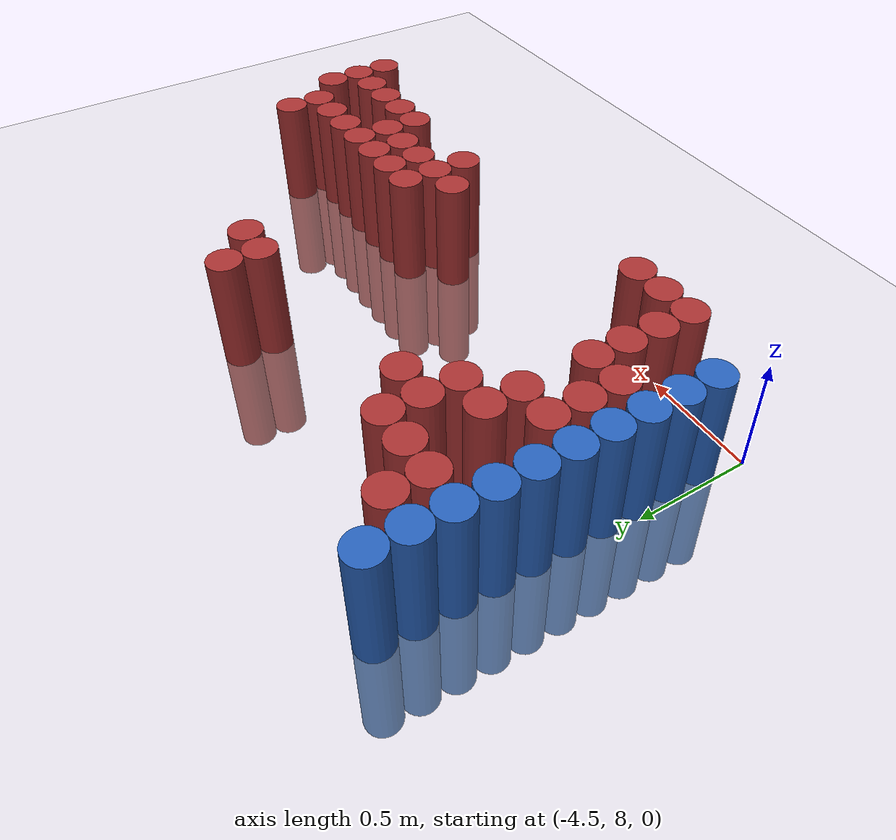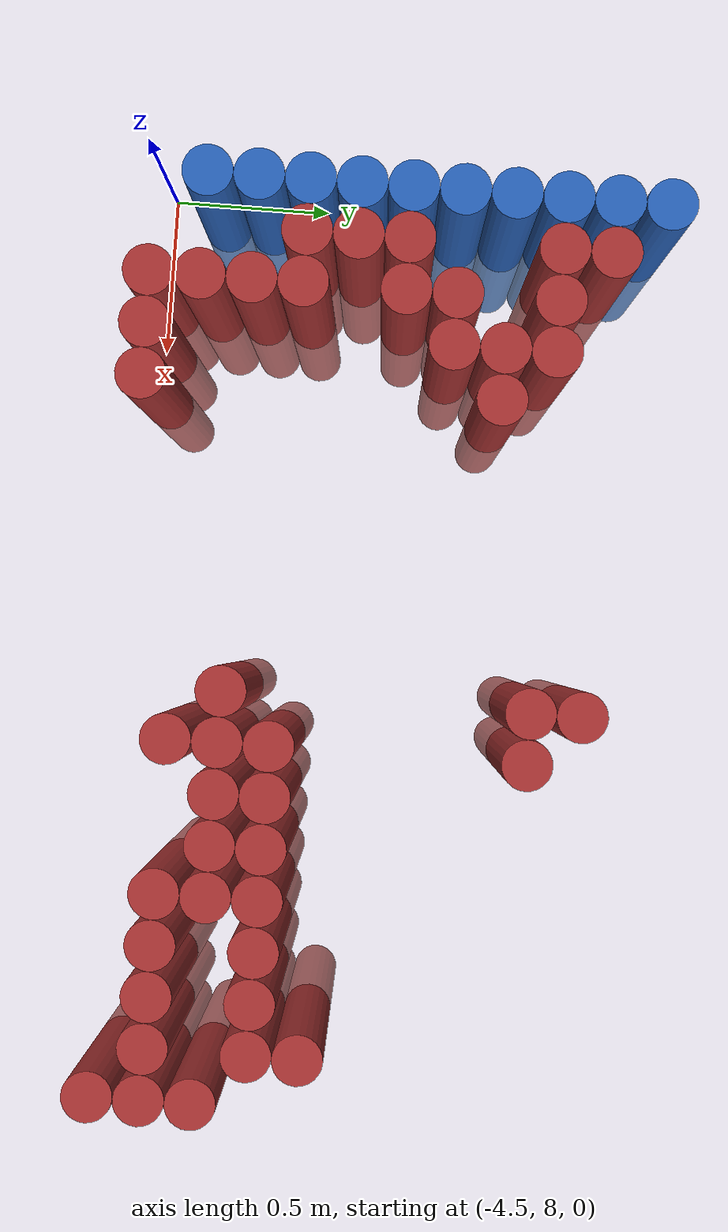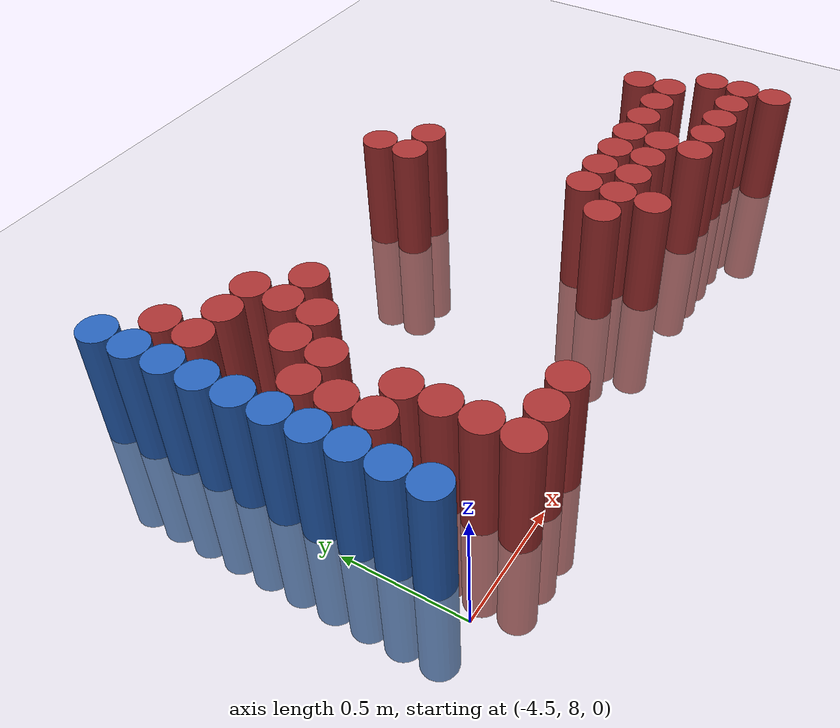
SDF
<sdf version="1.6">
 <world name="default">
  <model name="ground_plane">
   <static>1</static>
   <link name="link">
    <collision name="collision">
     <geometry><plane><normal>0 0 1</normal><size>100 100</size></plane></geometry>
     <surface><friction><ode><mu>100</mu><mu2>50</mu2></ode></friction></surface>
    </collision>
    <visual name="visual">
     <cast_shadows>0</cast_shadows>
     <geometry><plane><normal>0 0 1</normal><size>100 100</size></plane></geometry>
     <material>
      <script><uri>file://media/materials/scripts/gazebo.material</uri><name>Gazebo/Grey</name></script>
     </material>
    </visual>
   </link>
  </model>
  <model name="unit_cylinder_116">
   <static>1</static>
   <pose>-4.425000 8.175000 0.000000 0.000000 0.000000 0.000000</pose>
   <link name="link">
    <inertial>
     <mass>1</mass>
     <inertia><ixx>0.145833</ixx><ixy>0</ixy><ixz>0</ixz><iyy>0.145833</iyy><iyz>0</iyz><izz>0.125</izz></inertia>
    </inertial>
    <collision name="collision">
     <geometry><cylinder><radius>0.075000</radius><length>1</length></cylinder></geometry>
    </collision>
    <visual name="visual">
     <geometry><cylinder><radius>0.075000</radius><length>1</length></cylinder></geometry>
     <material>
      <ambient>0.152000 0.379000 0.720000 1</ambient>
      <diffuse>0.152000 0.379000 0.720000 1</diffuse>
     </material>
     <material>
      <script><name>Gazebo/Grey</name><uri>file://media/materials/scripts/gazebo.material</uri></script>
     </material>
    </visual>
   </link>
  </model>
  <model name="unit_cylinder_117">
   <static>1</static>
   <pose>-4.425000 8.325000 0.000000 0.000000 0.000000 0.000000</pose>
   <link name="link">
    <inertial>
     <mass>1</mass>
     <inertia><ixx>0.145833</ixx><ixy>0</ixy><ixz>0</ixz><iyy>0.145833</iyy><iyz>0</iyz><izz>0.125</izz></inertia>
    </inertial>
    <collision name="collision">
     <geometry><cylinder><radius>0.075000</radius><length>1</length></cylinder></geometry>
    </collision>
    <visual name="visual">
     <geometry><cylinder><radius>0.075000</radius><length>1</length></cylinder></geometry>
     <material>
      <ambient>0.152000 0.379000 0.720000 1</ambient>
      <diffuse>0.152000 0.379000 0.720000 1</diffuse>
     </material>
     <material>
      <script><name>Gazebo/Grey</name><uri>file://media/materials/scripts/gazebo.material</uri></script>
     </material>
    </visual>
   </link>
  </model>
  <model name="unit_cylinder_118">
   <static>1</static>
   <pose>-4.425000 8.475000 0.000000 0.000000 0.000000 0.000000</pose>
   <link name="link">
    <inertial>
     <mass>1</mass>
     <inertia><ixx>0.145833</ixx><ixy>0</ixy><ixz>0</ixz><iyy>0.145833</iyy><iyz>0</iyz><izz>0.125</izz></inertia>
    </inertial>
    <collision name="collision">
     <geometry><cylinder><radius>0.075000</radius><length>1</length></cylinder></geometry>
    </collision>
    <visual name="visual">
     <geometry><cylinder><radius>0.075000</radius><length>1</length></cylinder></geometry>
     <material>
      <ambient>0.152000 0.379000 0.720000 1</ambient>
      <diffuse>0.152000 0.379000 0.720000 1</diffuse>
     </material>
     <material>
      <script><name>Gazebo/Grey</name><uri>file://media/materials/scripts/gazebo.material</uri></script>
     </material>
    </visual>
   </link>
  </model>
  <model name="unit_cylinder_119">
   <static>1</static>
   <pose>-4.425000 8.625000 0.000000 0.000000 0.000000 0.000000</pose>
   <link name="link">
    <inertial>
     <mass>1</mass>
     <inertia><ixx>0.145833</ixx><ixy>0</ixy><ixz>0</ixz><iyy>0.145833</iyy><iyz>0</iyz><izz>0.125</izz></inertia>
    </inertial>
    <collision name="collision">
     <geometry><cylinder><radius>0.075000</radius><length>1</length></cylinder></geometry>
    </collision>
    <visual name="visual">
     <geometry><cylinder><radius>0.075000</radius><length>1</length></cylinder></geometry>
     <material>
      <ambient>0.152000 0.379000 0.720000 1</ambient>
      <diffuse>0.152000 0.379000 0.720000 1</diffuse>
     </material>
     <material>
      <script><name>Gazebo/Grey</name><uri>file://media/materials/scripts/gazebo.material</uri></script>
     </material>
    </visual>
   </link>
  </model>
  <model name="unit_cylinder_120">
   <static>1</static>
   <pose>-4.425000 8.775000 0.000000 0.000000 0.000000 0.000000</pose>
   <link name="link">
    <inertial>
     <mass>1</mass>
     <inertia><ixx>0.145833</ixx><ixy>0</ixy><ixz>0</ixz><iyy>0.145833</iyy><iyz>0</iyz><izz>0.125</izz></inertia>
    </inertial>
    <collision name="collision">
     <geometry><cylinder><radius>0.075000</radius><length>1</length></cylinder></geometry>
    </collision>
    <visual name="visual">
     <geometry><cylinder><radius>0.075000</radius><length>1</length></cylinder></geometry>
     <material>
      <ambient>0.152000 0.379000 0.720000 1</ambient>
      <diffuse>0.152000 0.379000 0.720000 1</diffuse>
     </material>
     <material>
      <script><name>Gazebo/Grey</name><uri>file://media/materials/scripts/gazebo.material</uri></script>
     </material>
    </visual>
   </link>
  </model>
  <model name="unit_cylinder_121">
   <static>1</static>
   <pose>-4.425000 8.925000 0.000000 0.000000 0.000000 0.000000</pose>
   <link name="link">
    <inertial>
     <mass>1</mass>
     <inertia><ixx>0.145833</ixx><ixy>0</ixy><ixz>0</ixz><iyy>0.145833</iyy><iyz>0</iyz><izz>0.125</izz></inertia>
    </inertial>
    <collision name="collision">
     <geometry><cylinder><radius>0.075000</radius><length>1</length></cylinder></geometry>
    </collision>
    <visual name="visual">
     <geometry><cylinder><radius>0.075000</radius><length>1</length></cylinder></geometry>
     <material>
      <ambient>0.152000 0.379000 0.720000 1</ambient>
      <diffuse>0.152000 0.379000 0.720000 1</diffuse>
     </material>
     <material>
      <script><name>Gazebo/Grey</name><uri>file://media/materials/scripts/gazebo.material</uri></script>
     </material>
    </visual>
   </link>
  </model>
  <model name="unit_cylinder_122">
   <static>1</static>
   <pose>-4.425000 9.075000 0.000000 0.000000 0.000000 0.000000</pose>
   <link name="link">
    <inertial>
     <mass>1</mass>
     <inertia><ixx>0.145833</ixx><ixy>0</ixy><ixz>0</ixz><iyy>0.145833</iyy><iyz>0</iyz><izz>0.125</izz></inertia>
    </inertial>
    <collision name="collision">
     <geometry><cylinder><radius>0.075000</radius><length>1</length></cylinder></geometry>
    </collision>
    <visual name="visual">
     <geometry><cylinder><radius>0.075000</radius><length>1</length></cylinder></geometry>
     <material>
      <ambient>0.152000 0.379000 0.720000 1</ambient>
      <diffuse>0.152000 0.379000 0.720000 1</diffuse>
     </material>
     <material>
      <script><name>Gazebo/Grey</name><uri>file://media/materials/scripts/gazebo.material</uri></script>
     </material>
    </visual>
   </link>
  </model>
  <model name="unit_cylinder_123">
   <static>1</static>
   <pose>-4.425000 9.225000 0.000000 0.000000 0.000000 0.000000</pose>
   <link name="link">
    <inertial>
     <mass>1</mass>
     <inertia><ixx>0.145833</ixx><ixy>0</ixy><ixz>0</ixz><iyy>0.145833</iyy><iyz>0</iyz><izz>0.125</izz></inertia>
    </inertial>
    <collision name="collision">
     <geometry><cylinder><radius>0.075000</radius><length>1</length></cylinder></geometry>
    </collision>
    <visual name="visual">
     <geometry><cylinder><radius>0.075000</radius><length>1</length></cylinder></geometry>
     <material>
      <ambient>0.152000 0.379000 0.720000 1</ambient>
      <diffuse>0.152000 0.379000 0.720000 1</diffuse>
     </material>
     <material>
      <script><name>Gazebo/Grey</name><uri>file://media/materials/scripts/gazebo.material</uri></script>
     </material>
    </visual>
   </link>
  </model>
  <model name="unit_cylinder_124">
   <static>1</static>
   <pose>-4.425000 9.375000 0.000000 0.000000 0.000000 0.000000</pose>
   <link name="link">
    <inertial>
     <mass>1</mass>
     <inertia><ixx>0.145833</ixx><ixy>0</ixy><ixz>0</ixz><iyy>0.145833</iyy><iyz>0</iyz><izz>0.125</izz></inertia>
    </inertial>
    <collision name="collision">
     <geometry><cylinder><radius>0.075000</radius><length>1</length></cylinder></geometry>
    </collision>
    <visual name="visual">
     <geometry><cylinder><radius>0.075000</radius><length>1</length></cylinder></geometry>
     <material>
      <ambient>0.152000 0.379000 0.720000 1</ambient>
      <diffuse>0.152000 0.379000 0.720000 1</diffuse>
     </material>
     <material>
      <script><name>Gazebo/Grey</name><uri>file://media/materials/scripts/gazebo.material</uri></script>
     </material>
    </visual>
   </link>
  </model>
  <model name="unit_cylinder_125">
   <static>1</static>
   <pose>-4.425000 9.525000 0.000000 0.000000 0.000000 0.000000</pose>
   <link name="link">
    <inertial>
     <mass>1</mass>
     <inertia><ixx>0.145833</ixx><ixy>0</ixy><ixz>0</ixz><iyy>0.145833</iyy><iyz>0</iyz><izz>0.125</izz></inertia>
    </inertial>
    <collision name="collision">
     <geometry><cylinder><radius>0.075000</radius><length>1</length></cylinder></geometry>
    </collision>
    <visual name="visual">
     <geometry><cylinder><radius>0.075000</radius><length>1</length></cylinder></geometry>
     <material>
      <ambient>0.152000 0.379000 0.720000 1</ambient>
      <diffuse>0.152000 0.379000 0.720000 1</diffuse>
     </material>
     <material>
      <script><name>Gazebo/Grey</name><uri>file://media/materials/scripts/gazebo.material</uri></script>
     </material>
    </visual>
   </link>
  </model>
  <model name="unit_cylinder_135">
   <static>1</static>
   <pose>-4.275000 8.475000 0.000000 0.000000 0.000000 0.000000</pose>
   <link name="link">
    <inertial>
     <mass>1</mass>
     <inertia><ixx>0.145833</ixx><ixy>0</ixy><ixz>0</ixz><iyy>0.145833</iyy><iyz>0</iyz><izz>0.125</izz></inertia>
    </inertial>
    <collision name="collision">
     <geometry><cylinder><radius>0.075000</radius><length>1</length></cylinder></geometry>
    </collision>
    <visual name="visual">
     <geometry><cylinder><radius>0.075000</radius><length>1</length></cylinder></geometry>
     <material>
      <ambient>0.648000 0.192000 0.192000 1</ambient>
      <diffuse>0.648000 0.192000 0.192000 1</diffuse>
     </material>
     <material>
      <script><name>Gazebo/Grey</name><uri>file://media/materials/scripts/gazebo.material</uri></script>
     </material>
    </visual>
   </link>
  </model>
  <model name="unit_cylinder_136">
   <static>1</static>
   <pose>-4.275000 8.625000 0.000000 0.000000 0.000000 0.000000</pose>
   <link name="link">
    <inertial>
     <mass>1</mass>
     <inertia><ixx>0.145833</ixx><ixy>0</ixy><ixz>0</ixz><iyy>0.145833</iyy><iyz>0</iyz><izz>0.125</izz></inertia>
    </inertial>
    <collision name="collision">
     <geometry><cylinder><radius>0.075000</radius><length>1</length></cylinder></geometry>
    </collision>
    <visual name="visual">
     <geometry><cylinder><radius>0.075000</radius><length>1</length></cylinder></geometry>
     <material>
      <ambient>0.648000 0.192000 0.192000 1</ambient>
      <diffuse>0.648000 0.192000 0.192000 1</diffuse>
     </material>
     <material>
      <script><name>Gazebo/Grey</name><uri>file://media/materials/scripts/gazebo.material</uri></script>
     </material>
    </visual>
   </link>
  </model>
  <model name="unit_cylinder_137">
   <static>1</static>
   <pose>-4.275000 8.775000 0.000000 0.000000 0.000000 0.000000</pose>
   <link name="link">
    <inertial>
     <mass>1</mass>
     <inertia><ixx>0.145833</ixx><ixy>0</ixy><ixz>0</ixz><iyy>0.145833</iyy><iyz>0</iyz><izz>0.125</izz></inertia>
    </inertial>
    <collision name="collision">
     <geometry><cylinder><radius>0.075000</radius><length>1</length></cylinder></geometry>
    </collision>
    <visual name="visual">
     <geometry><cylinder><radius>0.075000</radius><length>1</length></cylinder></geometry>
     <material>
      <ambient>0.648000 0.192000 0.192000 1</ambient>
      <diffuse>0.648000 0.192000 0.192000 1</diffuse>
     </material>
     <material>
      <script><name>Gazebo/Grey</name><uri>file://media/materials/scripts/gazebo.material</uri></script>
     </material>
    </visual>
   </link>
  </model>
  <model name="unit_cylinder_138">
   <static>1</static>
   <pose>-4.275000 9.225000 0.000000 0.000000 0.000000 0.000000</pose>
   <link name="link">
    <inertial>
     <mass>1</mass>
     <inertia><ixx>0.145833</ixx><ixy>0</ixy><ixz>0</ixz><iyy>0.145833</iyy><iyz>0</iyz><izz>0.125</izz></inertia>
    </inertial>
    <collision name="collision">
     <geometry><cylinder><radius>0.075000</radius><length>1</length></cylinder></geometry>
    </collision>
    <visual name="visual">
     <geometry><cylinder><radius>0.075000</radius><length>1</length></cylinder></geometry>
     <material>
      <ambient>0.648000 0.192000 0.192000 1</ambient>
      <diffuse>0.648000 0.192000 0.192000 1</diffuse>
     </material>
     <material>
      <script><name>Gazebo/Grey</name><uri>file://media/materials/scripts/gazebo.material</uri></script>
     </material>
    </visual>
   </link>
  </model>
  <model name="unit_cylinder_139">
   <static>1</static>
   <pose>-4.275000 9.375000 0.000000 0.000000 0.000000 0.000000</pose>
   <link name="link">
    <inertial>
     <mass>1</mass>
     <inertia><ixx>0.145833</ixx><ixy>0</ixy><ixz>0</ixz><iyy>0.145833</iyy><iyz>0</iyz><izz>0.125</izz></inertia>
    </inertial>
    <collision name="collision">
     <geometry><cylinder><radius>0.075000</radius><length>1</length></cylinder></geometry>
    </collision>
    <visual name="visual">
     <geometry><cylinder><radius>0.075000</radius><length>1</length></cylinder></geometry>
     <material>
      <ambient>0.648000 0.192000 0.192000 1</ambient>
      <diffuse>0.648000 0.192000 0.192000 1</diffuse>
     </material>
     <material>
      <script><name>Gazebo/Grey</name><uri>file://media/materials/scripts/gazebo.material</uri></script>
     </material>
    </visual>
   </link>
  </model>
  <model name="unit_cylinder_149">
   <static>1</static>
   <pose>-4.125000 8.025000 0.000000 0.000000 0.000000 0.000000</pose>
   <link name="link">
    <inertial>
     <mass>1</mass>
     <inertia><ixx>0.145833</ixx><ixy>0</ixy><ixz>0</ixz><iyy>0.145833</iyy><iyz>0</iyz><izz>0.125</izz></inertia>
    </inertial>
    <collision name="collision">
     <geometry><cylinder><radius>0.075000</radius><length>1</length></cylinder></geometry>
    </collision>
    <visual name="visual">
     <geometry><cylinder><radius>0.075000</radius><length>1</length></cylinder></geometry>
     <material>
      <ambient>0.648000 0.192000 0.192000 1</ambient>
      <diffuse>0.648000 0.192000 0.192000 1</diffuse>
     </material>
     <material>
      <script><name>Gazebo/Grey</name><uri>file://media/materials/scripts/gazebo.material</uri></script>
     </material>
    </visual>
   </link>
  </model>
  <model name="unit_cylinder_150">
   <static>1</static>
   <pose>-4.125000 8.175000 0.000000 0.000000 0.000000 0.000000</pose>
   <link name="link">
    <inertial>
     <mass>1</mass>
     <inertia><ixx>0.145833</ixx><ixy>0</ixy><ixz>0</ixz><iyy>0.145833</iyy><iyz>0</iyz><izz>0.125</izz></inertia>
    </inertial>
    <collision name="collision">
     <geometry><cylinder><radius>0.075000</radius><length>1</length></cylinder></geometry>
    </collision>
    <visual name="visual">
     <geometry><cylinder><radius>0.075000</radius><length>1</length></cylinder></geometry>
     <material>
      <ambient>0.648000 0.192000 0.192000 1</ambient>
      <diffuse>0.648000 0.192000 0.192000 1</diffuse>
     </material>
     <material>
      <script><name>Gazebo/Grey</name><uri>file://media/materials/scripts/gazebo.material</uri></script>
     </material>
    </visual>
   </link>
  </model>
  <model name="unit_cylinder_151">
   <static>1</static>
   <pose>-4.125000 8.325000 0.000000 0.000000 0.000000 0.000000</pose>
   <link name="link">
    <inertial>
     <mass>1</mass>
     <inertia><ixx>0.145833</ixx><ixy>0</ixy><ixz>0</ixz><iyy>0.145833</iyy><iyz>0</iyz><izz>0.125</izz></inertia>
    </inertial>
    <collision name="collision">
     <geometry><cylinder><radius>0.075000</radius><length>1</length></cylinder></geometry>
    </collision>
    <visual name="visual">
     <geometry><cylinder><radius>0.075000</radius><length>1</length></cylinder></geometry>
     <material>
      <ambient>0.648000 0.192000 0.192000 1</ambient>
      <diffuse>0.648000 0.192000 0.192000 1</diffuse>
     </material>
     <material>
      <script><name>Gazebo/Grey</name><uri>file://media/materials/scripts/gazebo.material</uri></script>
     </material>
    </visual>
   </link>
  </model>
  <model name="unit_cylinder_152">
   <static>1</static>
   <pose>-4.125000 8.475000 0.000000 0.000000 0.000000 0.000000</pose>
   <link name="link">
    <inertial>
     <mass>1</mass>
     <inertia><ixx>0.145833</ixx><ixy>0</ixy><ixz>0</ixz><iyy>0.145833</iyy><iyz>0</iyz><izz>0.125</izz></inertia>
    </inertial>
    <collision name="collision">
     <geometry><cylinder><radius>0.075000</radius><length>1</length></cylinder></geometry>
    </collision>
    <visual name="visual">
     <geometry><cylinder><radius>0.075000</radius><length>1</length></cylinder></geometry>
     <material>
      <ambient>0.648000 0.192000 0.192000 1</ambient>
      <diffuse>0.648000 0.192000 0.192000 1</diffuse>
     </material>
     <material>
      <script><name>Gazebo/Grey</name><uri>file://media/materials/scripts/gazebo.material</uri></script>
     </material>
    </visual>
   </link>
  </model>
  <model name="unit_cylinder_153">
   <static>1</static>
   <pose>-4.125000 8.775000 0.000000 0.000000 0.000000 0.000000</pose>
   <link name="link">
    <inertial>
     <mass>1</mass>
     <inertia><ixx>0.145833</ixx><ixy>0</ixy><ixz>0</ixz><iyy>0.145833</iyy><iyz>0</iyz><izz>0.125</izz></inertia>
    </inertial>
    <collision name="collision">
     <geometry><cylinder><radius>0.075000</radius><length>1</length></cylinder></geometry>
    </collision>
    <visual name="visual">
     <geometry><cylinder><radius>0.075000</radius><length>1</length></cylinder></geometry>
     <material>
      <ambient>0.648000 0.192000 0.192000 1</ambient>
      <diffuse>0.648000 0.192000 0.192000 1</diffuse>
     </material>
     <material>
      <script><name>Gazebo/Grey</name><uri>file://media/materials/scripts/gazebo.material</uri></script>
     </material>
    </visual>
   </link>
  </model>
  <model name="unit_cylinder_154">
   <static>1</static>
   <pose>-4.125000 8.925000 0.000000 0.000000 0.000000 0.000000</pose>
   <link name="link">
    <inertial>
     <mass>1</mass>
     <inertia><ixx>0.145833</ixx><ixy>0</ixy><ixz>0</ixz><iyy>0.145833</iyy><iyz>0</iyz><izz>0.125</izz></inertia>
    </inertial>
    <collision name="collision">
     <geometry><cylinder><radius>0.075000</radius><length>1</length></cylinder></geometry>
    </collision>
    <visual name="visual">
     <geometry><cylinder><radius>0.075000</radius><length>1</length></cylinder></geometry>
     <material>
      <ambient>0.648000 0.192000 0.192000 1</ambient>
      <diffuse>0.648000 0.192000 0.192000 1</diffuse>
     </material>
     <material>
      <script><name>Gazebo/Grey</name><uri>file://media/materials/scripts/gazebo.material</uri></script>
     </material>
    </visual>
   </link>
  </model>
  <model name="unit_cylinder_155">
   <static>1</static>
   <pose>-4.125000 9.225000 0.000000 0.000000 0.000000 0.000000</pose>
   <link name="link">
    <inertial>
     <mass>1</mass>
     <inertia><ixx>0.145833</ixx><ixy>0</ixy><ixz>0</ixz><iyy>0.145833</iyy><iyz>0</iyz><izz>0.125</izz></inertia>
    </inertial>
    <collision name="collision">
     <geometry><cylinder><radius>0.075000</radius><length>1</length></cylinder></geometry>
    </collision>
    <visual name="visual">
     <geometry><cylinder><radius>0.075000</radius><length>1</length></cylinder></geometry>
     <material>
      <ambient>0.648000 0.192000 0.192000 1</ambient>
      <diffuse>0.648000 0.192000 0.192000 1</diffuse>
     </material>
     <material>
      <script><name>Gazebo/Grey</name><uri>file://media/materials/scripts/gazebo.material</uri></script>
     </material>
    </visual>
   </link>
  </model>
  <model name="unit_cylinder_162">
   <static>1</static>
   <pose>-3.975000 8.025000 0.000000 0.000000 0.000000 0.000000</pose>
   <link name="link">
    <inertial>
     <mass>1</mass>
     <inertia><ixx>0.145833</ixx><ixy>0</ixy><ixz>0</ixz><iyy>0.145833</iyy><iyz>0</iyz><izz>0.125</izz></inertia>
    </inertial>
    <collision name="collision">
     <geometry><cylinder><radius>0.075000</radius><length>1</length></cylinder></geometry>
    </collision>
    <visual name="visual">
     <geometry><cylinder><radius>0.075000</radius><length>1</length></cylinder></geometry>
     <material>
      <ambient>0.648000 0.192000 0.192000 1</ambient>
      <diffuse>0.648000 0.192000 0.192000 1</diffuse>
     </material>
     <material>
      <script><name>Gazebo/Grey</name><uri>file://media/materials/scripts/gazebo.material</uri></script>
     </material>
    </visual>
   </link>
  </model>
  <model name="unit_cylinder_163">
   <static>1</static>
   <pose>-3.975000 8.925000 0.000000 0.000000 0.000000 0.000000</pose>
   <link name="link">
    <inertial>
     <mass>1</mass>
     <inertia><ixx>0.145833</ixx><ixy>0</ixy><ixz>0</ixz><iyy>0.145833</iyy><iyz>0</iyz><izz>0.125</izz></inertia>
    </inertial>
    <collision name="collision">
     <geometry><cylinder><radius>0.075000</radius><length>1</length></cylinder></geometry>
    </collision>
    <visual name="visual">
     <geometry><cylinder><radius>0.075000</radius><length>1</length></cylinder></geometry>
     <material>
      <ambient>0.648000 0.192000 0.192000 1</ambient>
      <diffuse>0.648000 0.192000 0.192000 1</diffuse>
     </material>
     <material>
      <script><name>Gazebo/Grey</name><uri>file://media/materials/scripts/gazebo.material</uri></script>
     </material>
    </visual>
   </link>
  </model>
  <model name="unit_cylinder_164">
   <static>1</static>
   <pose>-3.975000 9.075000 0.000000 0.000000 0.000000 0.000000</pose>
   <link name="link">
    <inertial>
     <mass>1</mass>
     <inertia><ixx>0.145833</ixx><ixy>0</ixy><ixz>0</ixz><iyy>0.145833</iyy><iyz>0</iyz><izz>0.125</izz></inertia>
    </inertial>
    <collision name="collision">
     <geometry><cylinder><radius>0.075000</radius><length>1</length></cylinder></geometry>
    </collision>
    <visual name="visual">
     <geometry><cylinder><radius>0.075000</radius><length>1</length></cylinder></geometry>
     <material>
      <ambient>0.648000 0.192000 0.192000 1</ambient>
      <diffuse>0.648000 0.192000 0.192000 1</diffuse>
     </material>
     <material>
      <script><name>Gazebo/Grey</name><uri>file://media/materials/scripts/gazebo.material</uri></script>
     </material>
    </visual>
   </link>
  </model>
  <model name="unit_cylinder_165">
   <static>1</static>
   <pose>-3.975000 9.225000 0.000000 0.000000 0.000000 0.000000</pose>
   <link name="link">
    <inertial>
     <mass>1</mass>
     <inertia><ixx>0.145833</ixx><ixy>0</ixy><ixz>0</ixz><iyy>0.145833</iyy><iyz>0</iyz><izz>0.125</izz></inertia>
    </inertial>
    <collision name="collision">
     <geometry><cylinder><radius>0.075000</radius><length>1</length></cylinder></geometry>
    </collision>
    <visual name="visual">
     <geometry><cylinder><radius>0.075000</radius><length>1</length></cylinder></geometry>
     <material>
      <ambient>0.648000 0.192000 0.192000 1</ambient>
      <diffuse>0.648000 0.192000 0.192000 1</diffuse>
     </material>
     <material>
      <script><name>Gazebo/Grey</name><uri>file://media/materials/scripts/gazebo.material</uri></script>
     </material>
    </visual>
   </link>
  </model>
  <model name="unit_cylinder_169">
   <static>1</static>
   <pose>-3.825000 8.025000 0.000000 0.000000 0.000000 0.000000</pose>
   <link name="link">
    <inertial>
     <mass>1</mass>
     <inertia><ixx>0.145833</ixx><ixy>0</ixy><ixz>0</ixz><iyy>0.145833</iyy><iyz>0</iyz><izz>0.125</izz></inertia>
    </inertial>
    <collision name="collision">
     <geometry><cylinder><radius>0.075000</radius><length>1</length></cylinder></geometry>
    </collision>
    <visual name="visual">
     <geometry><cylinder><radius>0.075000</radius><length>1</length></cylinder></geometry>
     <material>
      <ambient>0.648000 0.192000 0.192000 1</ambient>
      <diffuse>0.648000 0.192000 0.192000 1</diffuse>
     </material>
     <material>
      <script><name>Gazebo/Grey</name><uri>file://media/materials/scripts/gazebo.material</uri></script>
     </material>
    </visual>
   </link>
  </model>
  <model name="unit_cylinder_170">
   <static>1</static>
   <pose>-3.825000 9.075000 0.000000 0.000000 0.000000 0.000000</pose>
   <link name="link">
    <inertial>
     <mass>1</mass>
     <inertia><ixx>0.145833</ixx><ixy>0</ixy><ixz>0</ixz><iyy>0.145833</iyy><iyz>0</iyz><izz>0.125</izz></inertia>
    </inertial>
    <collision name="collision">
     <geometry><cylinder><radius>0.075000</radius><length>1</length></cylinder></geometry>
    </collision>
    <visual name="visual">
     <geometry><cylinder><radius>0.075000</radius><length>1</length></cylinder></geometry>
     <material>
      <ambient>0.648000 0.192000 0.192000 1</ambient>
      <diffuse>0.648000 0.192000 0.192000 1</diffuse>
     </material>
     <material>
      <script><name>Gazebo/Grey</name><uri>file://media/materials/scripts/gazebo.material</uri></script>
     </material>
    </visual>
   </link>
  </model>
  <model name="unit_cylinder_176">
   <static>1</static>
   <pose>-2.925000 8.325000 0.000000 0.000000 0.000000 0.000000</pose>
   <link name="link">
    <inertial>
     <mass>1</mass>
     <inertia><ixx>0.145833</ixx><ixy>0</ixy><ixz>0</ixz><iyy>0.145833</iyy><iyz>0</iyz><izz>0.125</izz></inertia>
    </inertial>
    <collision name="collision">
     <geometry><cylinder><radius>0.075000</radius><length>1</length></cylinder></geometry>
    </collision>
    <visual name="visual">
     <geometry><cylinder><radius>0.075000</radius><length>1</length></cylinder></geometry>
     <material>
      <ambient>0.648000 0.192000 0.192000 1</ambient>
      <diffuse>0.648000 0.192000 0.192000 1</diffuse>
     </material>
     <material>
      <script><name>Gazebo/Grey</name><uri>file://media/materials/scripts/gazebo.material</uri></script>
     </material>
    </visual>
   </link>
  </model>
  <model name="unit_cylinder_177">
   <static>1</static>
   <pose>-2.925000 9.225000 0.000000 0.000000 0.000000 0.000000</pose>
   <link name="link">
    <inertial>
     <mass>1</mass>
     <inertia><ixx>0.145833</ixx><ixy>0</ixy><ixz>0</ixz><iyy>0.145833</iyy><iyz>0</iyz><izz>0.125</izz></inertia>
    </inertial>
    <collision name="collision">
     <geometry><cylinder><radius>0.075000</radius><length>1</length></cylinder></geometry>
    </collision>
    <visual name="visual">
     <geometry><cylinder><radius>0.075000</radius><length>1</length></cylinder></geometry>
     <material>
      <ambient>0.648000 0.192000 0.192000 1</ambient>
      <diffuse>0.648000 0.192000 0.192000 1</diffuse>
     </material>
     <material>
      <script><name>Gazebo/Grey</name><uri>file://media/materials/scripts/gazebo.material</uri></script>
     </material>
    </visual>
   </link>
  </model>
  <model name="unit_cylinder_178">
   <static>1</static>
   <pose>-2.925000 9.375000 0.000000 0.000000 0.000000 0.000000</pose>
   <link name="link">
    <inertial>
     <mass>1</mass>
     <inertia><ixx>0.145833</ixx><ixy>0</ixy><ixz>0</ixz><iyy>0.145833</iyy><iyz>0</iyz><izz>0.125</izz></inertia>
    </inertial>
    <collision name="collision">
     <geometry><cylinder><radius>0.075000</radius><length>1</length></cylinder></geometry>
    </collision>
    <visual name="visual">
     <geometry><cylinder><radius>0.075000</radius><length>1</length></cylinder></geometry>
     <material>
      <ambient>0.648000 0.192000 0.192000 1</ambient>
      <diffuse>0.648000 0.192000 0.192000 1</diffuse>
     </material>
     <material>
      <script><name>Gazebo/Grey</name><uri>file://media/materials/scripts/gazebo.material</uri></script>
     </material>
    </visual>
   </link>
  </model>
  <model name="unit_cylinder_179">
   <static>1</static>
   <pose>-2.775000 8.175000 0.000000 0.000000 0.000000 0.000000</pose>
   <link name="link">
    <inertial>
     <mass>1</mass>
     <inertia><ixx>0.145833</ixx><ixy>0</ixy><ixz>0</ixz><iyy>0.145833</iyy><iyz>0</iyz><izz>0.125</izz></inertia>
    </inertial>
    <collision name="collision">
     <geometry><cylinder><radius>0.075000</radius><length>1</length></cylinder></geometry>
    </collision>
    <visual name="visual">
     <geometry><cylinder><radius>0.075000</radius><length>1</length></cylinder></geometry>
     <material>
      <ambient>0.648000 0.192000 0.192000 1</ambient>
      <diffuse>0.648000 0.192000 0.192000 1</diffuse>
     </material>
     <material>
      <script><name>Gazebo/Grey</name><uri>file://media/materials/scripts/gazebo.material</uri></script>
     </material>
    </visual>
   </link>
  </model>
  <model name="unit_cylinder_180">
   <static>1</static>
   <pose>-2.775000 8.325000 0.000000 0.000000 0.000000 0.000000</pose>
   <link name="link">
    <inertial>
     <mass>1</mass>
     <inertia><ixx>0.145833</ixx><ixy>0</ixy><ixz>0</ixz><iyy>0.145833</iyy><iyz>0</iyz><izz>0.125</izz></inertia>
    </inertial>
    <collision name="collision">
     <geometry><cylinder><radius>0.075000</radius><length>1</length></cylinder></geometry>
    </collision>
    <visual name="visual">
     <geometry><cylinder><radius>0.075000</radius><length>1</length></cylinder></geometry>
     <material>
      <ambient>0.648000 0.192000 0.192000 1</ambient>
      <diffuse>0.648000 0.192000 0.192000 1</diffuse>
     </material>
     <material>
      <script><name>Gazebo/Grey</name><uri>file://media/materials/scripts/gazebo.material</uri></script>
     </material>
    </visual>
   </link>
  </model>
  <model name="unit_cylinder_181">
   <static>1</static>
   <pose>-2.775000 8.475000 0.000000 0.000000 0.000000 0.000000</pose>
   <link name="link">
    <inertial>
     <mass>1</mass>
     <inertia><ixx>0.145833</ixx><ixy>0</ixy><ixz>0</ixz><iyy>0.145833</iyy><iyz>0</iyz><izz>0.125</izz></inertia>
    </inertial>
    <collision name="collision">
     <geometry><cylinder><radius>0.075000</radius><length>1</length></cylinder></geometry>
    </collision>
    <visual name="visual">
     <geometry><cylinder><radius>0.075000</radius><length>1</length></cylinder></geometry>
     <material>
      <ambient>0.648000 0.192000 0.192000 1</ambient>
      <diffuse>0.648000 0.192000 0.192000 1</diffuse>
     </material>
     <material>
      <script><name>Gazebo/Grey</name><uri>file://media/materials/scripts/gazebo.material</uri></script>
     </material>
    </visual>
   </link>
  </model>
  <model name="unit_cylinder_182">
   <static>1</static>
   <pose>-2.775000 9.225000 0.000000 0.000000 0.000000 0.000000</pose>
   <link name="link">
    <inertial>
     <mass>1</mass>
     <inertia><ixx>0.145833</ixx><ixy>0</ixy><ixz>0</ixz><iyy>0.145833</iyy><iyz>0</iyz><izz>0.125</izz></inertia>
    </inertial>
    <collision name="collision">
     <geometry><cylinder><radius>0.075000</radius><length>1</length></cylinder></geometry>
    </collision>
    <visual name="visual">
     <geometry><cylinder><radius>0.075000</radius><length>1</length></cylinder></geometry>
     <material>
      <ambient>0.648000 0.192000 0.192000 1</ambient>
      <diffuse>0.648000 0.192000 0.192000 1</diffuse>
     </material>
     <material>
      <script><name>Gazebo/Grey</name><uri>file://media/materials/scripts/gazebo.material</uri></script>
     </material>
    </visual>
   </link>
  </model>
  <model name="unit_cylinder_184">
   <static>1</static>
   <pose>-2.625000 8.325000 0.000000 0.000000 0.000000 0.000000</pose>
   <link name="link">
    <inertial>
     <mass>1</mass>
     <inertia><ixx>0.145833</ixx><ixy>0</ixy><ixz>0</ixz><iyy>0.145833</iyy><iyz>0</iyz><izz>0.125</izz></inertia>
    </inertial>
    <collision name="collision">
     <geometry><cylinder><radius>0.075000</radius><length>1</length></cylinder></geometry>
    </collision>
    <visual name="visual">
     <geometry><cylinder><radius>0.075000</radius><length>1</length></cylinder></geometry>
     <material>
      <ambient>0.648000 0.192000 0.192000 1</ambient>
      <diffuse>0.648000 0.192000 0.192000 1</diffuse>
     </material>
     <material>
      <script><name>Gazebo/Grey</name><uri>file://media/materials/scripts/gazebo.material</uri></script>
     </material>
    </visual>
   </link>
  </model>
  <model name="unit_cylinder_185">
   <static>1</static>
   <pose>-2.625000 8.475000 0.000000 0.000000 0.000000 0.000000</pose>
   <link name="link">
    <inertial>
     <mass>1</mass>
     <inertia><ixx>0.145833</ixx><ixy>0</ixy><ixz>0</ixz><iyy>0.145833</iyy><iyz>0</iyz><izz>0.125</izz></inertia>
    </inertial>
    <collision name="collision">
     <geometry><cylinder><radius>0.075000</radius><length>1</length></cylinder></geometry>
    </collision>
    <visual name="visual">
     <geometry><cylinder><radius>0.075000</radius><length>1</length></cylinder></geometry>
     <material>
      <ambient>0.648000 0.192000 0.192000 1</ambient>
      <diffuse>0.648000 0.192000 0.192000 1</diffuse>
     </material>
     <material>
      <script><name>Gazebo/Grey</name><uri>file://media/materials/scripts/gazebo.material</uri></script>
     </material>
    </visual>
   </link>
  </model>
  <model name="unit_cylinder_191">
   <static>1</static>
   <pose>-2.475000 8.325000 0.000000 0.000000 0.000000 0.000000</pose>
   <link name="link">
    <inertial>
     <mass>1</mass>
     <inertia><ixx>0.145833</ixx><ixy>0</ixy><ixz>0</ixz><iyy>0.145833</iyy><iyz>0</iyz><izz>0.125</izz></inertia>
    </inertial>
    <collision name="collision">
     <geometry><cylinder><radius>0.075000</radius><length>1</length></cylinder></geometry>
    </collision>
    <visual name="visual">
     <geometry><cylinder><radius>0.075000</radius><length>1</length></cylinder></geometry>
     <material>
      <ambient>0.648000 0.192000 0.192000 1</ambient>
      <diffuse>0.648000 0.192000 0.192000 1</diffuse>
     </material>
     <material>
      <script><name>Gazebo/Grey</name><uri>file://media/materials/scripts/gazebo.material</uri></script>
     </material>
    </visual>
   </link>
  </model>
  <model name="unit_cylinder_192">
   <static>1</static>
   <pose>-2.475000 8.475000 0.000000 0.000000 0.000000 0.000000</pose>
   <link name="link">
    <inertial>
     <mass>1</mass>
     <inertia><ixx>0.145833</ixx><ixy>0</ixy><ixz>0</ixz><iyy>0.145833</iyy><iyz>0</iyz><izz>0.125</izz></inertia>
    </inertial>
    <collision name="collision">
     <geometry><cylinder><radius>0.075000</radius><length>1</length></cylinder></geometry>
    </collision>
    <visual name="visual">
     <geometry><cylinder><radius>0.075000</radius><length>1</length></cylinder></geometry>
     <material>
      <ambient>0.648000 0.192000 0.192000 1</ambient>
      <diffuse>0.648000 0.192000 0.192000 1</diffuse>
     </material>
     <material>
      <script><name>Gazebo/Grey</name><uri>file://media/materials/scripts/gazebo.material</uri></script>
     </material>
    </visual>
   </link>
  </model>
  <model name="unit_cylinder_200">
   <static>1</static>
   <pose>-2.325000 8.175000 0.000000 0.000000 0.000000 0.000000</pose>
   <link name="link">
    <inertial>
     <mass>1</mass>
     <inertia><ixx>0.145833</ixx><ixy>0</ixy><ixz>0</ixz><iyy>0.145833</iyy><iyz>0</iyz><izz>0.125</izz></inertia>
    </inertial>
    <collision name="collision">
     <geometry><cylinder><radius>0.075000</radius><length>1</length></cylinder></geometry>
    </collision>
    <visual name="visual">
     <geometry><cylinder><radius>0.075000</radius><length>1</length></cylinder></geometry>
     <material>
      <ambient>0.648000 0.192000 0.192000 1</ambient>
      <diffuse>0.648000 0.192000 0.192000 1</diffuse>
     </material>
     <material>
      <script><name>Gazebo/Grey</name><uri>file://media/materials/scripts/gazebo.material</uri></script>
     </material>
    </visual>
   </link>
  </model>
  <model name="unit_cylinder_201">
   <static>1</static>
   <pose>-2.325000 8.325000 0.000000 0.000000 0.000000 0.000000</pose>
   <link name="link">
    <inertial>
     <mass>1</mass>
     <inertia><ixx>0.145833</ixx><ixy>0</ixy><ixz>0</ixz><iyy>0.145833</iyy><iyz>0</iyz><izz>0.125</izz></inertia>
    </inertial>
    <collision name="collision">
     <geometry><cylinder><radius>0.075000</radius><length>1</length></cylinder></geometry>
    </collision>
    <visual name="visual">
     <geometry><cylinder><radius>0.075000</radius><length>1</length></cylinder></geometry>
     <material>
      <ambient>0.648000 0.192000 0.192000 1</ambient>
      <diffuse>0.648000 0.192000 0.192000 1</diffuse>
     </material>
     <material>
      <script><name>Gazebo/Grey</name><uri>file://media/materials/scripts/gazebo.material</uri></script>
     </material>
    </visual>
   </link>
  </model>
  <model name="unit_cylinder_202">
   <static>1</static>
   <pose>-2.325000 8.475000 0.000000 0.000000 0.000000 0.000000</pose>
   <link name="link">
    <inertial>
     <mass>1</mass>
     <inertia><ixx>0.145833</ixx><ixy>0</ixy><ixz>0</ixz><iyy>0.145833</iyy><iyz>0</iyz><izz>0.125</izz></inertia>
    </inertial>
    <collision name="collision">
     <geometry><cylinder><radius>0.075000</radius><length>1</length></cylinder></geometry>
    </collision>
    <visual name="visual">
     <geometry><cylinder><radius>0.075000</radius><length>1</length></cylinder></geometry>
     <material>
      <ambient>0.648000 0.192000 0.192000 1</ambient>
      <diffuse>0.648000 0.192000 0.192000 1</diffuse>
     </material>
     <material>
      <script><name>Gazebo/Grey</name><uri>file://media/materials/scripts/gazebo.material</uri></script>
     </material>
    </visual>
   </link>
  </model>
  <model name="unit_cylinder_209">
   <static>1</static>
   <pose>-2.175000 8.175000 0.000000 0.000000 0.000000 0.000000</pose>
   <link name="link">
    <inertial>
     <mass>1</mass>
     <inertia><ixx>0.145833</ixx><ixy>0</ixy><ixz>0</ixz><iyy>0.145833</iyy><iyz>0</iyz><izz>0.125</izz></inertia>
    </inertial>
    <collision name="collision">
     <geometry><cylinder><radius>0.075000</radius><length>1</length></cylinder></geometry>
    </collision>
    <visual name="visual">
     <geometry><cylinder><radius>0.075000</radius><length>1</length></cylinder></geometry>
     <material>
      <ambient>0.648000 0.192000 0.192000 1</ambient>
      <diffuse>0.648000 0.192000 0.192000 1</diffuse>
     </material>
     <material>
      <script><name>Gazebo/Grey</name><uri>file://media/materials/scripts/gazebo.material</uri></script>
     </material>
    </visual>
   </link>
  </model>
  <model name="unit_cylinder_210">
   <static>1</static>
   <pose>-2.175000 8.475000 0.000000 0.000000 0.000000 0.000000</pose>
   <link name="link">
    <inertial>
     <mass>1</mass>
     <inertia><ixx>0.145833</ixx><ixy>0</ixy><ixz>0</ixz><iyy>0.145833</iyy><iyz>0</iyz><izz>0.125</izz></inertia>
    </inertial>
    <collision name="collision">
     <geometry><cylinder><radius>0.075000</radius><length>1</length></cylinder></geometry>
    </collision>
    <visual name="visual">
     <geometry><cylinder><radius>0.075000</radius><length>1</length></cylinder></geometry>
     <material>
      <ambient>0.648000 0.192000 0.192000 1</ambient>
      <diffuse>0.648000 0.192000 0.192000 1</diffuse>
     </material>
     <material>
      <script><name>Gazebo/Grey</name><uri>file://media/materials/scripts/gazebo.material</uri></script>
     </material>
    </visual>
   </link>
  </model>
  <model name="unit_cylinder_219">
   <static>1</static>
   <pose>-2.025000 8.175000 0.000000 0.000000 0.000000 0.000000</pose>
   <link name="link">
    <inertial>
     <mass>1</mass>
     <inertia><ixx>0.145833</ixx><ixy>0</ixy><ixz>0</ixz><iyy>0.145833</iyy><iyz>0</iyz><izz>0.125</izz></inertia>
    </inertial>
    <collision name="collision">
     <geometry><cylinder><radius>0.075000</radius><length>1</length></cylinder></geometry>
    </collision>
    <visual name="visual">
     <geometry><cylinder><radius>0.075000</radius><length>1</length></cylinder></geometry>
     <material>
      <ambient>0.648000 0.192000 0.192000 1</ambient>
      <diffuse>0.648000 0.192000 0.192000 1</diffuse>
     </material>
     <material>
      <script><name>Gazebo/Grey</name><uri>file://media/materials/scripts/gazebo.material</uri></script>
     </material>
    </visual>
   </link>
  </model>
  <model name="unit_cylinder_220">
   <static>1</static>
   <pose>-2.025000 8.475000 0.000000 0.000000 0.000000 0.000000</pose>
   <link name="link">
    <inertial>
     <mass>1</mass>
     <inertia><ixx>0.145833</ixx><ixy>0</ixy><ixz>0</ixz><iyy>0.145833</iyy><iyz>0</iyz><izz>0.125</izz></inertia>
    </inertial>
    <collision name="collision">
     <geometry><cylinder><radius>0.075000</radius><length>1</length></cylinder></geometry>
    </collision>
    <visual name="visual">
     <geometry><cylinder><radius>0.075000</radius><length>1</length></cylinder></geometry>
     <material>
      <ambient>0.648000 0.192000 0.192000 1</ambient>
      <diffuse>0.648000 0.192000 0.192000 1</diffuse>
     </material>
     <material>
      <script><name>Gazebo/Grey</name><uri>file://media/materials/scripts/gazebo.material</uri></script>
     </material>
    </visual>
   </link>
  </model>
  <model name="unit_cylinder_225">
   <static>1</static>
   <pose>-1.875000 8.175000 0.000000 0.000000 0.000000 0.000000</pose>
   <link name="link">
    <inertial>
     <mass>1</mass>
     <inertia><ixx>0.145833</ixx><ixy>0</ixy><ixz>0</ixz><iyy>0.145833</iyy><iyz>0</iyz><izz>0.125</izz></inertia>
    </inertial>
    <collision name="collision">
     <geometry><cylinder><radius>0.075000</radius><length>1</length></cylinder></geometry>
    </collision>
    <visual name="visual">
     <geometry><cylinder><radius>0.075000</radius><length>1</length></cylinder></geometry>
     <material>
      <ambient>0.648000 0.192000 0.192000 1</ambient>
      <diffuse>0.648000 0.192000 0.192000 1</diffuse>
     </material>
     <material>
      <script><name>Gazebo/Grey</name><uri>file://media/materials/scripts/gazebo.material</uri></script>
     </material>
    </visual>
   </link>
  </model>
  <model name="unit_cylinder_226">
   <static>1</static>
   <pose>-1.875000 8.475000 0.000000 0.000000 0.000000 0.000000</pose>
   <link name="link">
    <inertial>
     <mass>1</mass>
     <inertia><ixx>0.145833</ixx><ixy>0</ixy><ixz>0</ixz><iyy>0.145833</iyy><iyz>0</iyz><izz>0.125</izz></inertia>
    </inertial>
    <collision name="collision">
     <geometry><cylinder><radius>0.075000</radius><length>1</length></cylinder></geometry>
    </collision>
    <visual name="visual">
     <geometry><cylinder><radius>0.075000</radius><length>1</length></cylinder></geometry>
     <material>
      <ambient>0.648000 0.192000 0.192000 1</ambient>
      <diffuse>0.648000 0.192000 0.192000 1</diffuse>
     </material>
     <material>
      <script><name>Gazebo/Grey</name><uri>file://media/materials/scripts/gazebo.material</uri></script>
     </material>
    </visual>
   </link>
  </model>
  <model name="unit_cylinder_227">
   <static>1</static>
   <pose>-1.875000 8.625000 0.000000 0.000000 0.000000 0.000000</pose>
   <link name="link">
    <inertial>
     <mass>1</mass>
     <inertia><ixx>0.145833</ixx><ixy>0</ixy><ixz>0</ixz><iyy>0.145833</iyy><iyz>0</iyz><izz>0.125</izz></inertia>
    </inertial>
    <collision name="collision">
     <geometry><cylinder><radius>0.075000</radius><length>1</length></cylinder></geometry>
    </collision>
    <visual name="visual">
     <geometry><cylinder><radius>0.075000</radius><length>1</length></cylinder></geometry>
     <material>
      <ambient>0.648000 0.192000 0.192000 1</ambient>
      <diffuse>0.648000 0.192000 0.192000 1</diffuse>
     </material>
     <material>
      <script><name>Gazebo/Grey</name><uri>file://media/materials/scripts/gazebo.material</uri></script>
     </material>
    </visual>
   </link>
  </model>
  <model name="unit_cylinder_230">
   <static>1</static>
   <pose>-1.725000 8.025000 0.000000 0.000000 0.000000 0.000000</pose>
   <link name="link">
    <inertial>
     <mass>1</mass>
     <inertia><ixx>0.145833</ixx><ixy>0</ixy><ixz>0</ixz><iyy>0.145833</iyy><iyz>0</iyz><izz>0.125</izz></inertia>
    </inertial>
    <collision name="collision">
     <geometry><cylinder><radius>0.075000</radius><length>1</length></cylinder></geometry>
    </collision>
    <visual name="visual">
     <geometry><cylinder><radius>0.075000</radius><length>1</length></cylinder></geometry>
     <material>
      <ambient>0.648000 0.192000 0.192000 1</ambient>
      <diffuse>0.648000 0.192000 0.192000 1</diffuse>
     </material>
     <material>
      <script><name>Gazebo/Grey</name><uri>file://media/materials/scripts/gazebo.material</uri></script>
     </material>
    </visual>
   </link>
  </model>
  <model name="unit_cylinder_231">
   <static>1</static>
   <pose>-1.725000 8.175000 0.000000 0.000000 0.000000 0.000000</pose>
   <link name="link">
    <inertial>
     <mass>1</mass>
     <inertia><ixx>0.145833</ixx><ixy>0</ixy><ixz>0</ixz><iyy>0.145833</iyy><iyz>0</iyz><izz>0.125</izz></inertia>
    </inertial>
    <collision name="collision">
     <geometry><cylinder><radius>0.075000</radius><length>1</length></cylinder></geometry>
    </collision>
    <visual name="visual">
     <geometry><cylinder><radius>0.075000</radius><length>1</length></cylinder></geometry>
     <material>
      <ambient>0.648000 0.192000 0.192000 1</ambient>
      <diffuse>0.648000 0.192000 0.192000 1</diffuse>
     </material>
     <material>
      <script><name>Gazebo/Grey</name><uri>file://media/materials/scripts/gazebo.material</uri></script>
     </material>
    </visual>
   </link>
  </model>
  <model name="unit_cylinder_232">
   <static>1</static>
   <pose>-1.725000 8.325000 0.000000 0.000000 0.000000 0.000000</pose>
   <link name="link">
    <inertial>
     <mass>1</mass>
     <inertia><ixx>0.145833</ixx><ixy>0</ixy><ixz>0</ixz><iyy>0.145833</iyy><iyz>0</iyz><izz>0.125</izz></inertia>
    </inertial>
    <collision name="collision">
     <geometry><cylinder><radius>0.075000</radius><length>1</length></cylinder></geometry>
    </collision>
    <visual name="visual">
     <geometry><cylinder><radius>0.075000</radius><length>1</length></cylinder></geometry>
     <material>
      <ambient>0.648000 0.192000 0.192000 1</ambient>
      <diffuse>0.648000 0.192000 0.192000 1</diffuse>
     </material>
     <material>
      <script><name>Gazebo/Grey</name><uri>file://media/materials/scripts/gazebo.material</uri></script>
     </material>
    </visual>
   </link>
  </model>
 </world>
</sdf>
